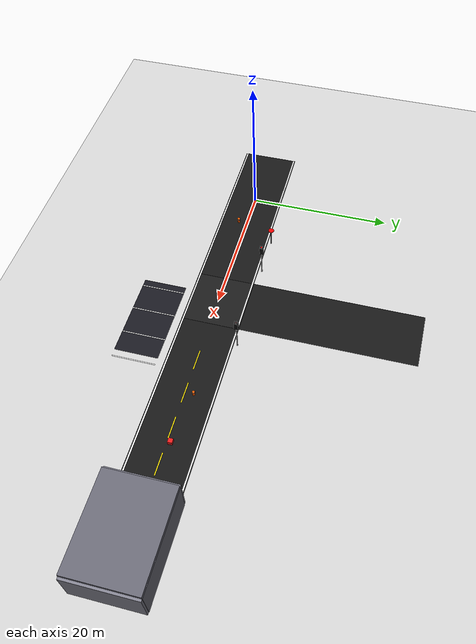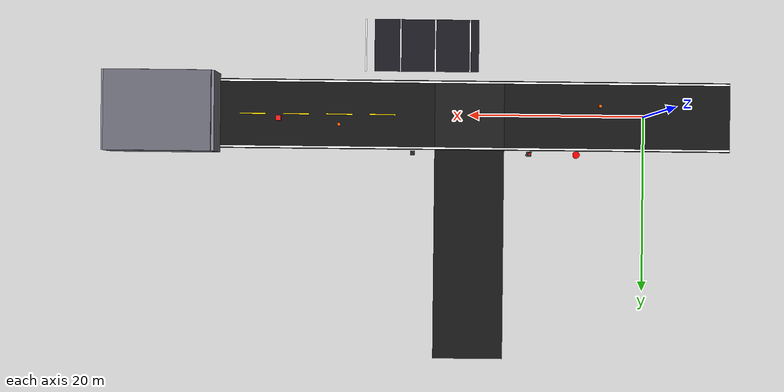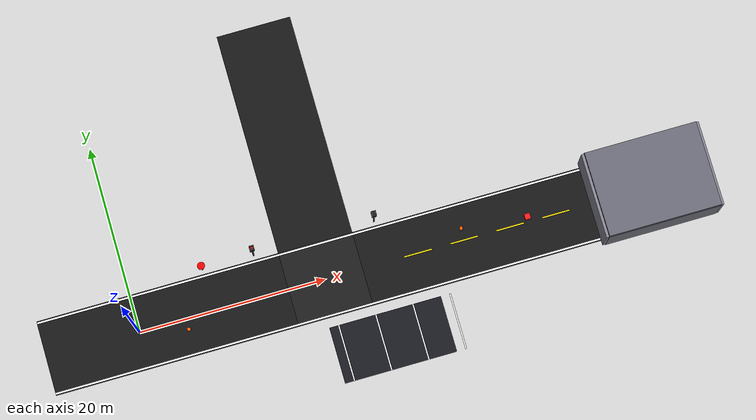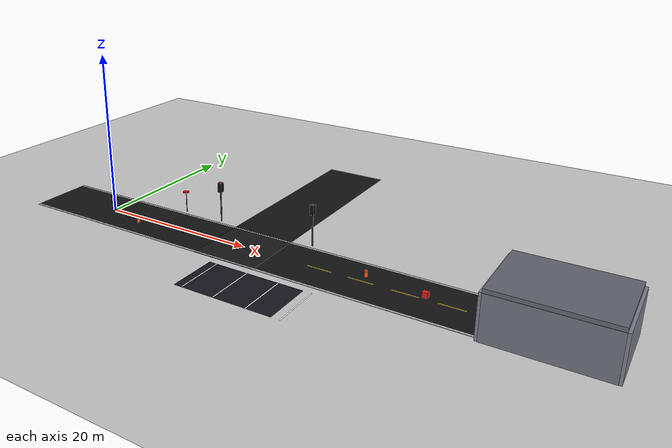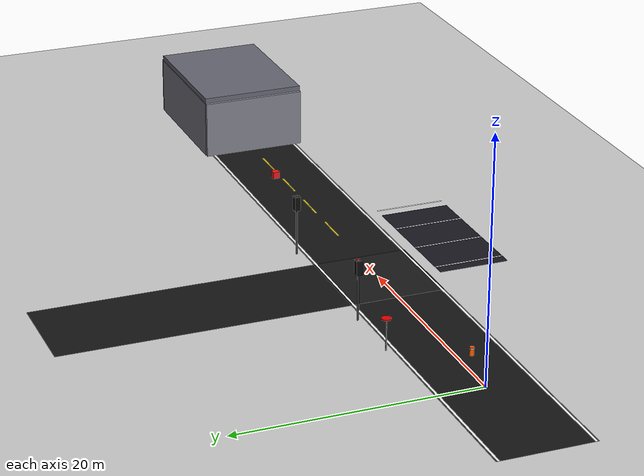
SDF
<?xml version="1.0" ?>
<sdf version="1.6">
  <world name="teknofest_robotaksi">
  <spherical_coordinates>
    <surface_model>EARTH_WGS84</surface_model>
    <latitude_deg>39.925018</latitude_deg>
    <longitude_deg>32.836956</longitude_deg>
    <elevation>850</elevation>
    <heading_deg>0</heading_deg>
  </spherical_coordinates>
    <include><uri>model://sun</uri></include>
    <include><uri>model://ground_plane</uri></include>

    <!-- ASFALT -->
    <model name="asfalt_ana"><static>true</static><pose>25 0 0.005 0 0 0</pose>
      <link name="link">
        <collision name="col"><geometry><box><size>70 8 0.01</size></box></geometry></collision>
        <visual name="vis"><geometry><box><size>70 8 0.01</size></box></geometry>
        <material><ambient>0.08 0.08 0.08 1</ambient><diffuse>0.08 0.08 0.08 1</diffuse></material></visual>
      </link>
    </model>

    <!-- ORTA ŞERİTLER -->
    <model name="s1"><static>true</static><pose>3 0 0.02 0 0 0</pose><link name="l"><visual name="v"><geometry><box><size>3 0.15 0.001</size></box></geometry><material><ambient>1 0.85 0 1</ambient><diffuse>1 0.85 0 1</diffuse></material></visual></link></model>
    <model name="s2"><static>true</static><pose>8 0 0.02 0 0 0</pose><link name="l"><visual name="v"><geometry><box><size>3 0.15 0.001</size></box></geometry><material><ambient>1 0.85 0 1</ambient><diffuse>1 0.85 0 1</diffuse></material></visual></link></model>
    <model name="s3"><static>true</static><pose>30 0 0.02 0 0 0</pose><link name="l"><visual name="v"><geometry><box><size>3 0.15 0.001</size></box></geometry><material><ambient>1 0.85 0 1</ambient><diffuse>1 0.85 0 1</diffuse></material></visual></link></model>
    <model name="s4"><static>true</static><pose>35 0 0.02 0 0 0</pose><link name="l"><visual name="v"><geometry><box><size>3 0.15 0.001</size></box></geometry><material><ambient>1 0.85 0 1</ambient><diffuse>1 0.85 0 1</diffuse></material></visual></link></model>
    <model name="s5"><static>true</static><pose>40 0 0.02 0 0 0</pose><link name="l"><visual name="v"><geometry><box><size>3 0.15 0.001</size></box></geometry><material><ambient>1 0.85 0 1</ambient><diffuse>1 0.85 0 1</diffuse></material></visual></link></model>
    <model name="s6"><static>true</static><pose>45 0 0.02 0 0 0</pose><link name="l"><visual name="v"><geometry><box><size>3 0.15 0.001</size></box></geometry><material><ambient>1 0.85 0 1</ambient><diffuse>1 0.85 0 1</diffuse></material></visual></link></model>

    <!-- KENAR ŞERİTLER -->
    <model name="kenar_sol"><static>true</static><pose>25 3.8 0.02 0 0 0</pose>
      <link name="l"><visual name="v"><geometry><box><size>70 0.2 0.001</size></box></geometry>
      <material><ambient>1 1 1 1</ambient><diffuse>1 1 1 1</diffuse></material></visual></link>
    </model>
    <model name="kenar_sag"><static>true</static><pose>25 -3.8 0.02 0 0 0</pose>
      <link name="l"><visual name="v"><geometry><box><size>70 0.2 0.001</size></box></geometry>
      <material><ambient>1 1 1 1</ambient><diffuse>1 1 1 1</diffuse></material></visual></link>
    </model>

    <!-- KAVŞAK -->
    <model name="kavsak_zemin"><static>true</static><pose>20 0 0.008 0 0 0</pose>
      <link name="l"><visual name="v"><geometry><box><size>8 8 0.01</size></box></geometry>
      <material><ambient>0.1 0.1 0.1 1</ambient></material></visual></link>
    </model>
    <model name="kavsak_yol"><static>true</static><pose>20 14 0.005 0 0 0</pose>
      <link name="l">
        <collision name="col"><geometry><box><size>8 28 0.01</size></box></geometry></collision>
        <visual name="v"><geometry><box><size>8 28 0.01</size></box></geometry>
        <material><ambient>0.08 0.08 0.08 1</ambient></material></visual>
      </link>
    </model>

    <!-- ===== TRAFİK IŞIĞI 1 - KIRMIZI ===== -->
    <model name="tl1_direk"><static>true</static><pose>13.5 4.5 2.0 0 0 0</pose>
      <link name="l">
        <collision name="col"><geometry><cylinder><radius>0.08</radius><length>4.0</length></cylinder></geometry></collision>
        <visual name="v"><geometry><cylinder><radius>0.08</radius><length>4.0</length></cylinder></geometry>
        <material><ambient>0.2 0.2 0.2 1</ambient></material></visual>
      </link>
    </model>
    <model name="tl1_kutu"><static>true</static><pose>13.5 4.5 4.5 0 0 0</pose>
      <link name="l">
        <visual name="v"><geometry><box><size>0.5 0.5 1.2</size></box></geometry>
        <material><ambient>0.05 0.05 0.05 1</ambient></material></visual>
      </link>
    </model>
    <!-- KIRMIZI BÜYÜK PARLAK -->
    <model name="tl1_kirmizi"><static>true</static><pose>13.5 4.5 4.95 0 0 0</pose>
      <link name="l">
        <visual name="v"><geometry><sphere><radius>0.2</radius></sphere></geometry>
        <material>
          <ambient>1 0 0 1</ambient>
          <diffuse>1 0 0 1</diffuse>
          <specular>1 0.5 0.5 1</specular>
          <emissive>1 0 0 1</emissive>
        </material>
      </visual>
      </link>
    </model>
    <!-- SARI SÖNÜK -->
    <model name="tl1_sari"><static>true</static><pose>13.5 4.5 4.5 0 0 0</pose>
      <link name="l"><visual name="v"><geometry><sphere><radius>0.2</radius></sphere></geometry>
      <material><ambient>0.08 0.08 0 1</ambient><diffuse>0.08 0.08 0 1</diffuse></material></visual></link>
    </model>
    <!-- YEŞİL SÖNÜK -->
    <model name="tl1_yesil"><static>true</static><pose>13.5 4.5 4.05 0 0 0</pose>
      <link name="l"><visual name="v"><geometry><sphere><radius>0.2</radius></sphere></geometry>
      <material><ambient>0 0.08 0 1</ambient><diffuse>0 0.08 0 1</diffuse></material></visual></link>
    </model>

    <!-- ===== TRAFİK IŞIĞI 2 - YEŞİL ===== -->
    <model name="tl2_direk"><static>true</static><pose>26.5 4.5 2.0 0 0 0</pose>
      <link name="l">
        <collision name="col"><geometry><cylinder><radius>0.08</radius><length>4.0</length></cylinder></geometry></collision>
        <visual name="v"><geometry><cylinder><radius>0.08</radius><length>4.0</length></cylinder></geometry>
        <material><ambient>0.2 0.2 0.2 1</ambient></material></visual>
      </link>
    </model>
    <model name="tl2_kutu"><static>true</static><pose>26.5 4.5 4.5 0 0 0</pose>
      <link name="l">
        <visual name="v"><geometry><box><size>0.5 0.5 1.2</size></box></geometry>
        <material><ambient>0.05 0.05 0.05 1</ambient></material></visual>
      </link>
    </model>
    <!-- KIRMIZI SÖNÜK -->
    <model name="tl2_kirmizi"><static>true</static><pose>26.5 4.5 4.95 0 0 0</pose>
      <link name="l"><visual name="v"><geometry><sphere><radius>0.2</radius></sphere></geometry>
      <material><ambient>0.08 0 0 1</ambient><diffuse>0.08 0 0 1</diffuse></material></visual></link>
    </model>
    <!-- YEŞİL BÜYÜK PARLAK -->
    <model name="tl2_yesil"><static>true</static><pose>26.5 4.5 4.05 0 0 0</pose>
      <link name="l">
        <visual name="v"><geometry><sphere><radius>0.2</radius></sphere></geometry>
        <material>
          <ambient>0 1 0 1</ambient>
          <diffuse>0 1 0 1</diffuse>
          <specular>0.5 1 0.5 1</specular>
          <emissive>0 1 0 1</emissive>
        </material>
      </visual>
      </link>
    </model>

    <!-- TÜNEL -->
    <model name="tunel_zemin"><static>true</static><pose>55 0 0.005 0 0 0</pose>
      <link name="l">
        <collision name="col"><geometry><box><size>12 8 0.01</size></box></geometry></collision>
        <visual name="v"><geometry><box><size>12 8 0.01</size></box></geometry>
        <material><ambient>0.06 0.06 0.06 1</ambient></material></visual>
      </link>
    </model>
    <model name="tunel_sol"><static>true</static><pose>55 4.3 2.5 0 0 0</pose>
      <link name="l">
        <collision name="col"><geometry><box><size>12 0.5 5.0</size></box></geometry></collision>
        <visual name="v"><geometry><box><size>12 0.5 5.0</size></box></geometry>
        <material><ambient>0.45 0.45 0.5 1</ambient></material></visual>
      </link>
    </model>
    <model name="tunel_sag"><static>true</static><pose>55 -4.3 2.5 0 0 0</pose>
      <link name="l">
        <collision name="col"><geometry><box><size>12 0.5 5.0</size></box></geometry></collision>
        <visual name="v"><geometry><box><size>12 0.5 5.0</size></box></geometry>
        <material><ambient>0.45 0.45 0.5 1</ambient></material></visual>
      </link>
    </model>
    <model name="tunel_tavan"><static>true</static><pose>55 0 5.2 0 0 0</pose>
      <link name="l">
        <collision name="col"><geometry><box><size>12 9 0.5</size></box></geometry></collision>
        <visual name="v"><geometry><box><size>12 9 0.5</size></box></geometry>
        <material><ambient>0.4 0.4 0.45 1</ambient></material></visual>
      </link>
    </model>
    <model name="tunel_giris"><static>true</static><pose>49 0 2.5 0 0 0</pose>
      <link name="l">
        <collision name="col"><geometry><box><size>0.6 9 5.0</size></box></geometry></collision>
        <visual name="v"><geometry><box><size>0.6 9 5.0</size></box></geometry>
        <material><ambient>0.5 0.5 0.55 1</ambient></material></visual>
      </link>
    </model>
    <model name="tunel_cikis"><static>true</static><pose>61 0 2.5 0 0 0</pose>
      <link name="l">
        <collision name="col"><geometry><box><size>0.6 9 5.0</size></box></geometry></collision>
        <visual name="v"><geometry><box><size>0.6 9 5.0</size></box></geometry>
        <material><ambient>0.5 0.5 0.55 1</ambient></material></visual>
      </link>
    </model>
    <!-- Tünel içi ışık -->
    <light name="tunel_isik" type="point">
      <pose>55 0 4.0 0 0 0</pose>
      <diffuse>0.8 0.8 0.6 1</diffuse>
      <specular>0.2 0.2 0.2 1</specular>
      <attenuation><range>15</range><constant>0.3</constant><linear>0.01</linear><quadratic>0.001</quadratic></attenuation>
      <cast_shadows>false</cast_shadows>
    </light>

    <!-- DUR TABELASI -->
    <model name="dur_direk"><static>true</static><pose>8 4.5 1.2 0 0 0</pose>
      <link name="l">
        <collision name="col"><geometry><cylinder><radius>0.05</radius><length>2.4</length></cylinder></geometry></collision>
        <visual name="v"><geometry><cylinder><radius>0.05</radius><length>2.4</length></cylinder></geometry>
        <material><ambient>0.5 0.5 0.5 1</ambient></material></visual>
      </link>
    </model>
    <model name="dur_tabela"><static>true</static><pose>8 4.5 2.7 0 0 0</pose>
      <link name="l"><visual name="v"><geometry><cylinder><radius>0.4</radius><length>0.08</length></cylinder></geometry>
      <material><ambient>0.9 0 0 1</ambient><diffuse>0.9 0 0 1</diffuse><emissive>0.5 0 0 1</emissive></material></visual></link>
    </model>

    <!-- KONİLER -->
    <model name="koni1"><static>true</static><pose>5 -1.2 0.35 0 0 0</pose>
      <link name="l">
        <collision name="col"><geometry><cylinder><radius>0.18</radius><length>0.7</length></cylinder></geometry></collision>
        <visual name="v"><geometry><cylinder><radius>0.18</radius><length>0.7</length></cylinder></geometry>
        <material><ambient>1 0.35 0 1</ambient><diffuse>1 0.35 0 1</diffuse></material></visual>
      </link>
    </model>
    <model name="koni1s"><static>true</static><pose>5 -1.2 0.55 0 0 0</pose>
      <link name="l"><visual name="v"><geometry><cylinder><radius>0.19</radius><length>0.08</length></cylinder></geometry>
      <material><ambient>1 1 1 1</ambient></material></visual></link>
    </model>
    <model name="koni2"><static>true</static><pose>35 1.2 0.35 0 0 0</pose>
      <link name="l">
        <collision name="col"><geometry><cylinder><radius>0.18</radius><length>0.7</length></cylinder></geometry></collision>
        <visual name="v"><geometry><cylinder><radius>0.18</radius><length>0.7</length></cylinder></geometry>
        <material><ambient>1 0.35 0 1</ambient><diffuse>1 0.35 0 1</diffuse></material></visual>
      </link>
    </model>
    <model name="koni2s"><static>true</static><pose>35 1.2 0.55 0 0 0</pose>
      <link name="l"><visual name="v"><geometry><cylinder><radius>0.19</radius><length>0.08</length></cylinder></geometry>
      <material><ambient>1 1 1 1</ambient></material></visual></link>
    </model>

    <!-- DİNAMİK ENGEL -->
    <model name="dinamik_engel"><static>false</static><pose>42 0.5 0.3 0 0 0</pose>
      <link name="link">
        <collision name="col"><geometry><box><size>0.6 0.6 0.6</size></box></geometry></collision>
        <visual name="vis"><geometry><box><size>0.6 0.6 0.6</size></box></geometry>
        <material><ambient>0.9 0.1 0.1 1</ambient><diffuse>0.9 0.1 0.1 1</diffuse></material></visual>
        <inertial><mass>5.0</mass></inertial>
      </link>
    </model>

    <!-- PARK ALANI -->
    <model name="park_zemin"><static>true</static><pose>25 -8 0.005 0 0 0</pose>
      <link name="l"><visual name="v"><geometry><box><size>12 6 0.01</size></box></geometry>
      <material><ambient>0.09 0.09 0.12 1</ambient></material></visual></link>
    </model>
    <model name="pc1"><static>true</static><pose>20 -8 0.02 0 0 0</pose><link name="l"><visual name="v"><geometry><box><size>0.15 6 0.001</size></box></geometry><material><ambient>1 1 1 1</ambient></material></visual></link></model>
    <model name="pc2"><static>true</static><pose>24 -8 0.02 0 0 0</pose><link name="l"><visual name="v"><geometry><box><size>0.15 6 0.001</size></box></geometry><material><ambient>1 1 1 1</ambient></material></visual></link></model>
    <model name="pc3"><static>true</static><pose>28 -8 0.02 0 0 0</pose><link name="l"><visual name="v"><geometry><box><size>0.15 6 0.001</size></box></geometry><material><ambient>1 1 1 1</ambient></material></visual></link></model>
    <model name="pc4"><static>true</static><pose>32 -8 0.02 0 0 0</pose><link name="l"><visual name="v"><geometry><box><size>0.15 6 0.001</size></box></geometry><material><ambient>1 1 1 1</ambient></material></visual></link></model>

    <plugin name="gazebo_ros_state" filename="libgazebo_ros_state.so">
      <ros>
        <namespace>/gazebo</namespace>
      </ros>
      <update_rate>30.0</update_rate>
    </plugin>

    <physics type="ode">
      <real_time_update_rate>1000</real_time_update_rate>
      <max_step_size>0.001</max_step_size>
    </physics>

  </world>
</sdf>
